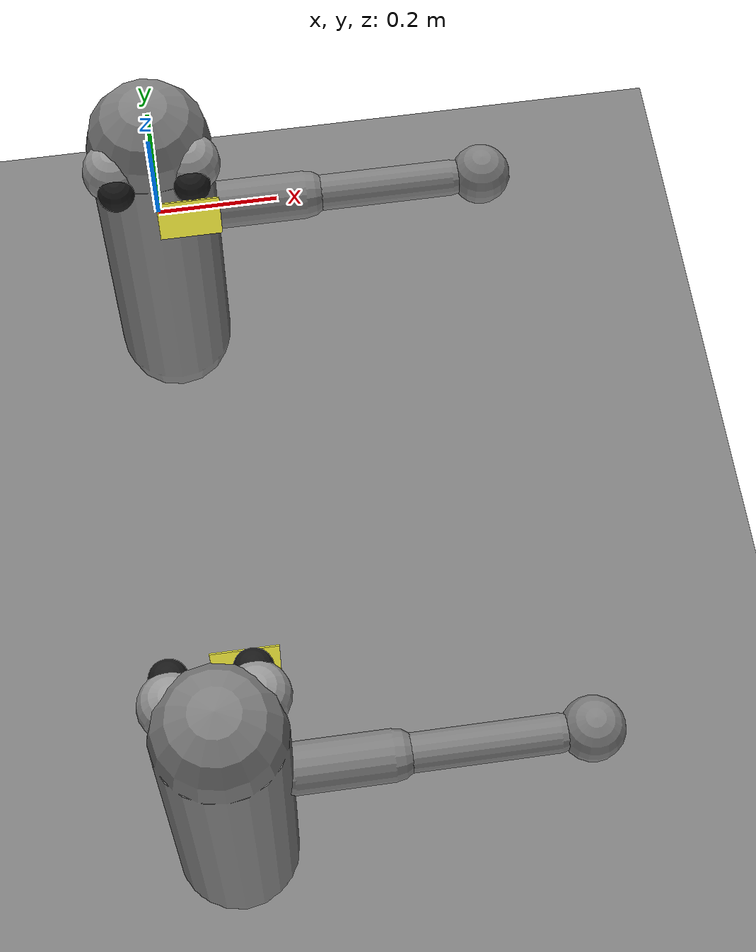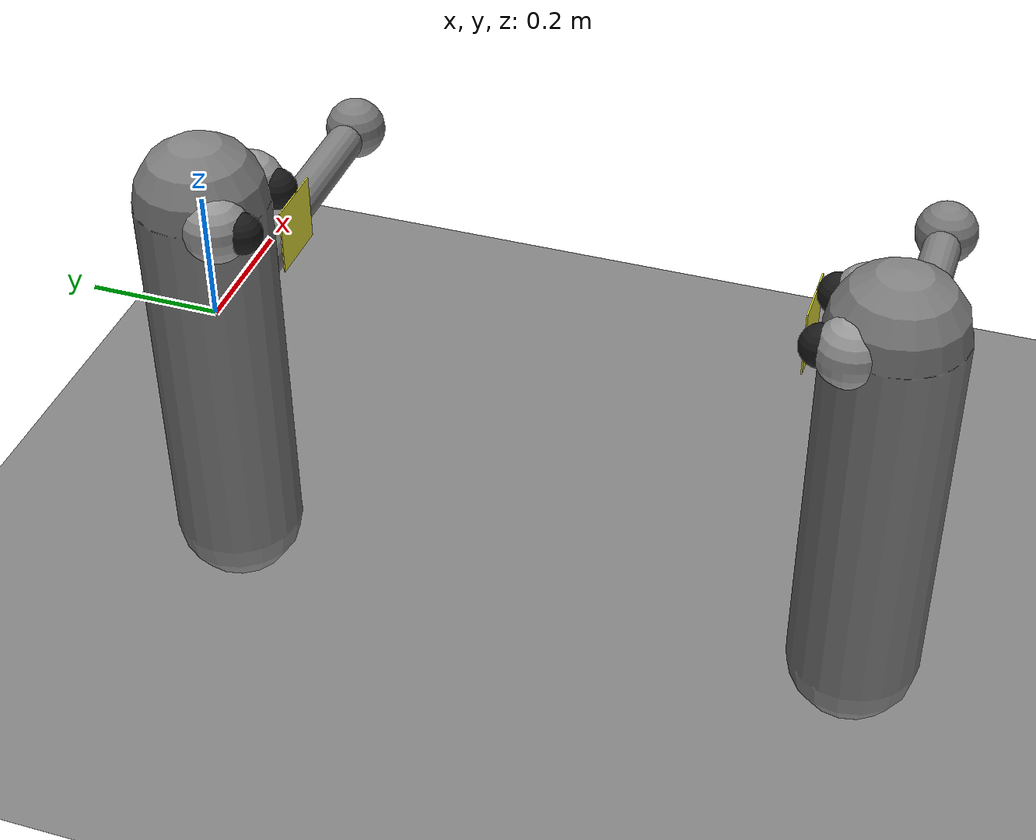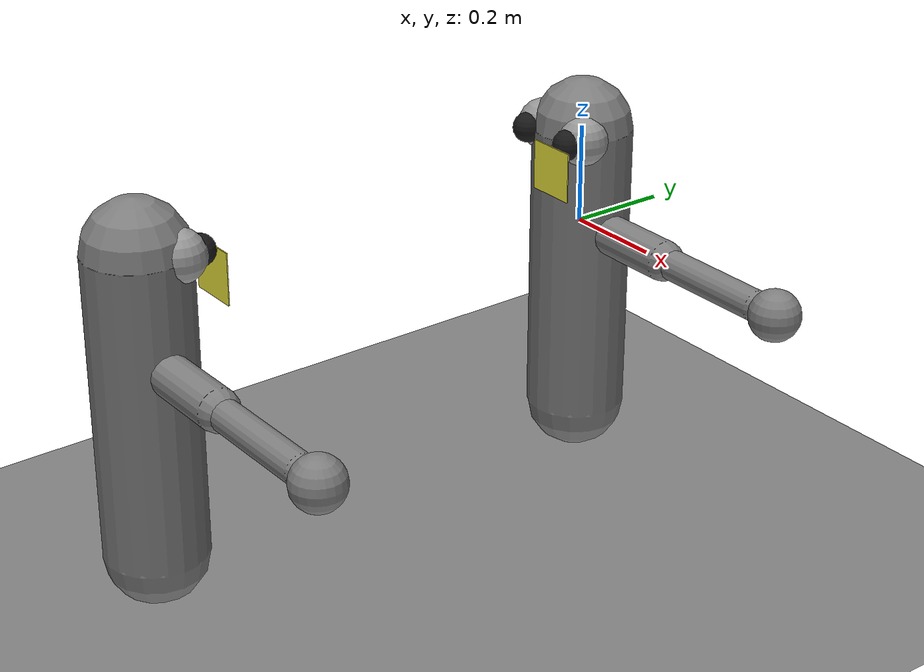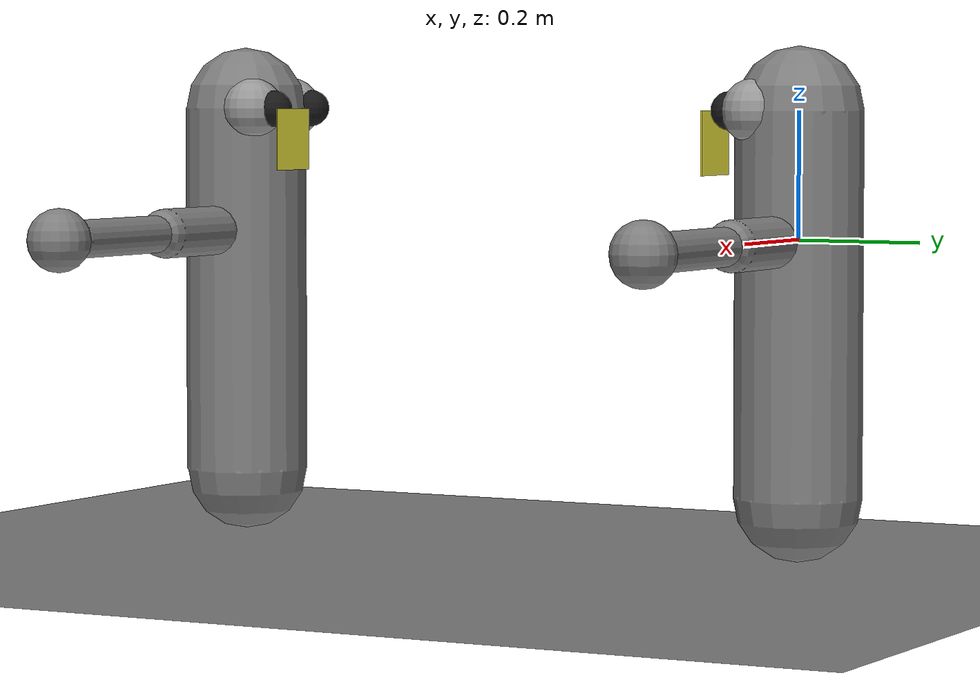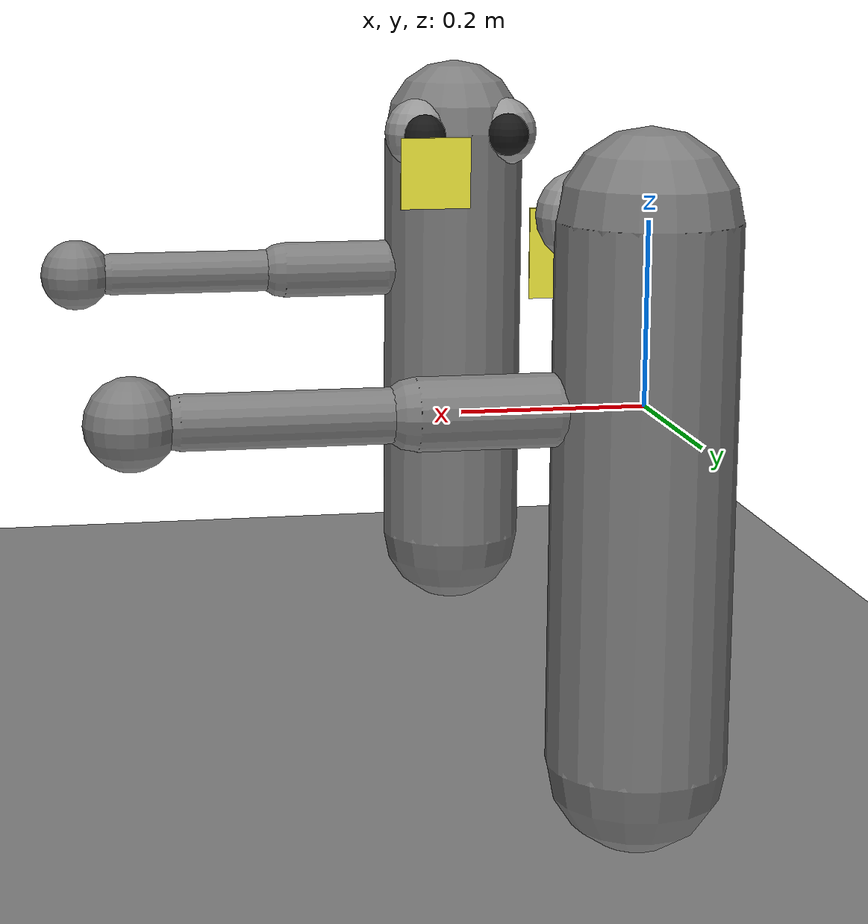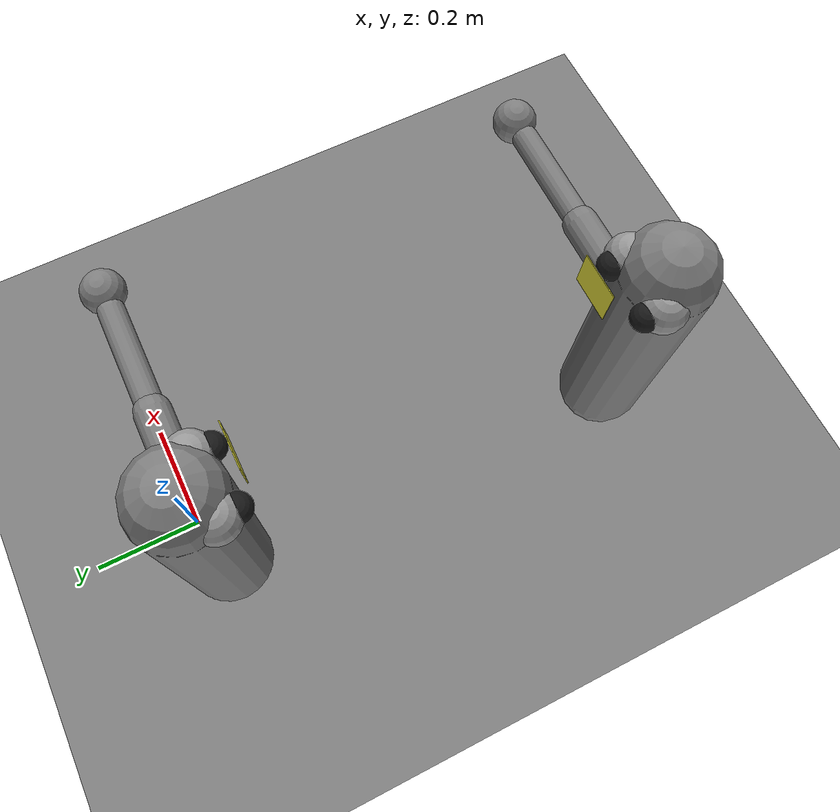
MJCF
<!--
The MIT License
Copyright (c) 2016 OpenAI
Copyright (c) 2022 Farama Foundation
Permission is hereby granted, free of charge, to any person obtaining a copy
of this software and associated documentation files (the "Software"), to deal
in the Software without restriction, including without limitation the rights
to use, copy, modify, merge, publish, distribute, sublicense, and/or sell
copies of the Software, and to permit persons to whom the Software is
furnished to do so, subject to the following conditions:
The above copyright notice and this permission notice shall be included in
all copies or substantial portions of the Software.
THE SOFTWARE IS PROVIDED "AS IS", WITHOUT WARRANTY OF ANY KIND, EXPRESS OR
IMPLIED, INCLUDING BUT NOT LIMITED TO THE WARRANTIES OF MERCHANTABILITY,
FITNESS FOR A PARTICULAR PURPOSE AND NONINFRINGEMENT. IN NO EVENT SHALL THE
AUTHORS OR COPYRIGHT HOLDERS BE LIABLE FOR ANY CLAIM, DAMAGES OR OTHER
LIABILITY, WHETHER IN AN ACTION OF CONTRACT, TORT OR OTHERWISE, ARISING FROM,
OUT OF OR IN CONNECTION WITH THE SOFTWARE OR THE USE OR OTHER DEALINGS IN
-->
<!--
Pusher model for `Pusher-v5`, based on openai/gym/Pusher
modified by @Kallinteris-Andreas
	- reduced body.object cylinder density 0.00001 -> 0.01
	- disabled body.object sphere
-->
<mujoco model="arm_mirror">
    <compiler inertiafromgeom="true" angle="radian" coordinate="local"/>

    <option timestep="0.01" gravity="0 0 0" iterations="20" integrator="Euler">
        <flag warmstart="disable"/>
    </option>

    <visual>
        <rgba haze=".3 .3 .3 1"/>
        <map znear="0.001"/>
    </visual>

    <default>
        <joint armature='0.04' damping="1" limited="true"/>
        <geom friction=".8 .1 .1" density="300" margin="0.002" condim="1" contype="0" conaffinity="0"/>
    </default>

    <asset>
        <texture type="skybox" builtin="gradient" rgb1="0.3 0.5 0.7" rgb2="0.3 0.7 0.5" width="512" height="512"/>
        <texture name="texplane" type="2d" builtin="checker" rgb1=".25 .25 .25" rgb2=".3 .3 .3" width="512" height="512"
                 mark="cross" markrgb=".8 .8 .8"/>
        <material name="matplane" reflectance="0.3" texture="texplane" texrepeat="1 1" texuniform="true"/>
    </asset>

    <worldbody>
        <camera name="world_camera" pos="0.283 -1.83 0.158" euler="1.48 0 0" fovy="30"/>
        <camera name="world_camera2" pos="1 -0.7 1" euler="0.27 0.72 1.0" fovy="60"/>
        <light diffuse=".5 .5 .5" pos="0 -0.5 3" dir="0 0 -1"/>
        <geom name="table" type="plane" pos="0 -0.5 -0.5" size="1 1 0.1" contype="1" conaffinity="1"/>

        <body name="baby_trunk" pos="0 -1.0 0">
            <geom name="baby_sticker" type="box" size="0.05 0.001 0.05" pos="0.05 0.12 0.15" rgba="1.0 0.97 0.25 1"/>
            <geom name="baby_trunk_geom" type="capsule" fromto="0 0 -0.4 0 0 0.2" size="0.1"/>
            <geom name="baby_l_eye1" type="sphere" rgba="0.6 0.6 0.6 1" pos="-0.06 0.05 0.2" size="0.05"/>
            <geom name="baby_l_eye2" type="sphere" rgba="0.1 0.1 0.1 1" pos="-0.06 0.09 0.2" size="0.03"/>
            <geom name="baby_r_eye1" type="sphere" rgba="0.6 0.6 0.6 1" pos=" 0.06 0.05 0.2" size="0.05"/>
            <geom name="baby_r_eye2" type="sphere" rgba="0.1 0.1 0.1 1" pos=" 0.06 0.09 0.2" size="0.03"/>
            <camera name="baby_r_camera" mode="fixed" pos="0.06 0.09 0.2" euler="1.3707963267948966 0 0" fovy="50"/>

            <body name="baby_r_upper_arm" pos="0.1 0 0">
                <geom name="baby_r_upper_arm_geom" type="capsule" fromto="0 0 0 0.15 0 0" size="0.04"/>
                <joint name="baby_r_upper_arm_lift" type="hinge" pos="0 0 0" axis="0 1 0" range="-0.5236 0.3"/>
                <joint name="baby_r_upper_arm_roll" type="hinge" pos="0 0 0" axis="1 0 0" range="-1.5 0.0"/>
                <joint name="baby_r_upper_arm_flex" type="hinge" pos="0 0 0" axis="0 0 1" range="0.0 1.04"/>

                <body name="baby_r_lower_arm" pos="0.15 0 0">
                    <!-- 32.1cm -> 40cm -->
                    <geom name="baby_r_lower_arm_geom" type="capsule" fromto="0 0 0 0.25 0 0" size="0.03"/>
                    <joint name="baby_r_lower_arm_flex" type="hinge" pos="0 0 0" axis="0 1 0" range="-3.10 0"/>

                    <body name="baby_r_hand" pos="0.25 0 0">
                        <joint name="baby_r_hand_flex" type="hinge" pos="0 0 0" axis="0 1 0"
                               range="-1.094 0" />
                        <geom name="baby_r_hand_geom" type="sphere" pos="0.05 0 0" size="0.05"/>
                    </body>
                </body>
            </body>
        </body>

        <body name="mirror_trunk" pos="0 0 0" xyaxes="-1 0 0 0 -1 0">
            <geom name="mirror_sticker" type="box" size="0.05 0.001 0.05" pos="-0.05 0.12 0.15" rgba="1.0 0.97 0.25 1"/>
            <geom name="mirror_trunk_geom" type="capsule" fromto="0 0 -0.4 0 0 0.2" size="0.1"/>
            <geom name="mirror_l_eye1" type="sphere" rgba="0.6 0.6 0.6 1" pos="-0.06 0.05 0.2" size="0.05"/>
            <geom name="mirror_l_eye2" type="sphere" rgba="0.1 0.1 0.1 1" pos="-0.06 0.09 0.2" size="0.03"/>
            <geom name="mirror_r_eye1" type="sphere" rgba="0.6 0.6 0.6 1" pos=" 0.06 0.05 0.2" size="0.05"/>
            <geom name="mirror_r_eye2" type="sphere" rgba="0.1 0.1 0.1 1" pos=" 0.06 0.09 0.2" size="0.03"/>

            <body name="mirror_l_upper_arm" pos="-0.1 0 0">
                <geom name="mirror_l_upper_arm_geom" type="capsule" fromto="0 0 0 -0.15 0 0" size="0.04"/>
                <joint name="mirror_l_upper_arm_lift" type="hinge" pos="0 0 0" axis="0 -1 0" range="-0.5236 0.3"/>
                <joint name="mirror_l_upper_arm_roll" type="hinge" pos="0 0 0" axis="1 0 0" range="-1.5 0.0"/>
                <joint name="mirror_l_upper_arm_flex" type="hinge" pos="0 0 0" axis="0 0 -1" range="0.0 1.04"/>

                <body name="mirror_l_lower_arm" pos="-0.15 0 0">
                    <!-- 32.1cm -> 40cm -->
                    <geom name="mirror_l_lower_arm_geom" type="capsule" fromto="0 0 0 -0.25 0 0" size="0.03"/>
                    <joint name="mirror_l_lower_arm_flex" type="hinge" pos="0 0 0" axis="0 -1 0" range="-3.10 0"/>

                    <body name="mirror_l_hand" pos="-0.25 0 0">
                        <joint name="mirror_l_hand_flex" type="hinge" pos="0 0 0" axis="0 -1 0"
                               range="-1.094 0"/>
                        <geom name="mirror_l_hand_geom" type="sphere" pos="-0.05 0 0" size="0.05"/>
                    </body>
                </body>
            </body>
        </body>
    </worldbody>

    <contact>
        <pair geom1="baby_trunk_geom" geom2="baby_r_lower_arm_geom"/>
        <pair geom1="baby_trunk_geom" geom2="baby_r_hand_geom"/>
        <pair geom1="baby_r_upper_arm_geom" geom2="baby_r_hand_geom"/>
        <pair geom1="baby_l_eye1" geom2="baby_r_hand_geom"/>
        <pair geom1="baby_l_eye2" geom2="baby_r_hand_geom"/>
        <pair geom1="baby_r_eye1" geom2="baby_r_hand_geom"/>
        <pair geom1="baby_r_eye2" geom2="baby_r_hand_geom"/>
    </contact>

    <sensor>
        <distance name="baby_touch_sensor" geom1="baby_r_hand_geom" geom2="baby_sticker" cutoff="2"/>
    </sensor>

    <actuator>
        <motor joint="baby_r_upper_arm_lift" ctrlrange="-2.0 2.0" ctrllimited="true"/>
        <motor joint="baby_r_upper_arm_roll" ctrlrange="-2.0 2.0" ctrllimited="true"/>
        <motor joint="baby_r_upper_arm_flex" ctrlrange="-2.0 2.0" ctrllimited="true"/>
        <motor joint="baby_r_lower_arm_flex" ctrlrange="-2.0 2.0" ctrllimited="true"/>
        <motor joint="baby_r_hand_flex" ctrlrange="-2.0 2.0" ctrllimited="true"/>
    </actuator>
</mujoco>
